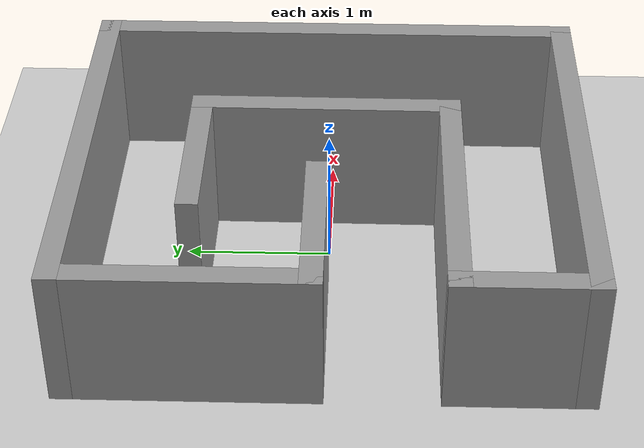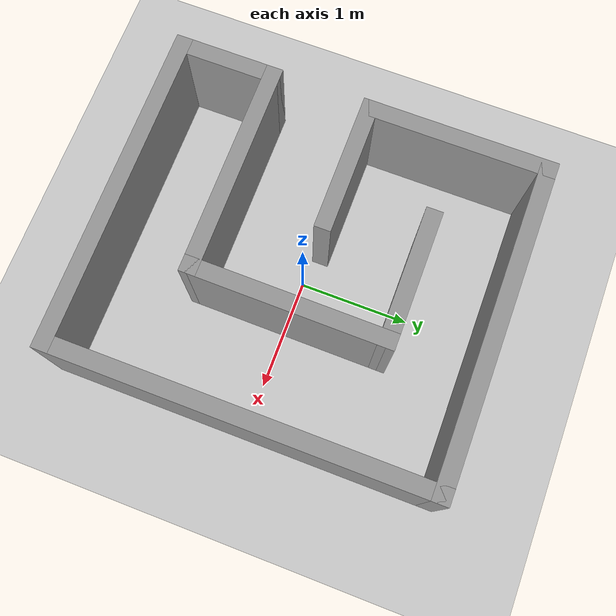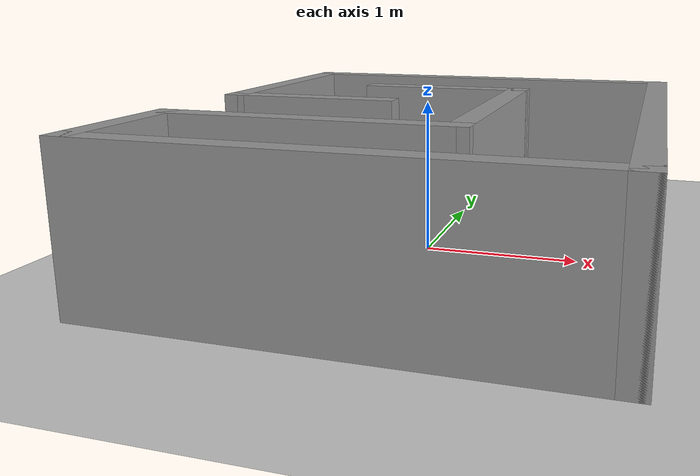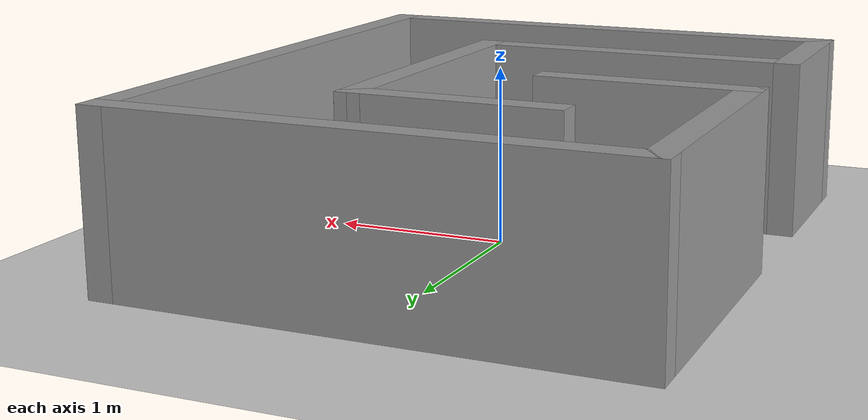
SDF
<?xml version="1.0"?>
<sdf version="1.6">
  <world name="maze_1_world">

    <!-- Required plugin for ROS-Gazebo interaction -->
    <plugin name="gazebo_ros_factory" filename="libgazebo_ros_factory.so"/>

    <!-- Ground plane -->
    <include>
      <uri>model://ground_plane</uri>
    </include>

    <!-- Sun (lighting) -->
    <include>
      <uri>model://sun</uri>
    </include>

    <include>
      <uri>model://maze_1</uri>  <!-- Must match model.config -->
      <pose>0 0 0 0 0 0</pose>   <!-- x y z roll pitch yaw -->
    </include>

    <!-- Scene settings (shadows, etc.) -->
    <scene>
      <shadows>false</shadows>
    </scene>

    <!-- Default camera view -->
    <gui fullscreen='0'>
      <camera name='user_camera'>
        <pose frame=''>0.319654 -0.235002 9.29441 0 1.5138 0.009599</pose>
        <view_controller>orbit</view_controller>
        <projection_type>perspective</projection_type>
      </camera>
    </gui>

    <!-- Physics engine settings (same as original) -->
    <physics type="ode">
      <real_time_update_rate>1000.0</real_time_update_rate>
      <max_step_size>0.001</max_step_size>
      <real_time_factor>1</real_time_factor>
      <ode>
        <solver>
          <type>quick</type>
          <iters>150</iters>
          <precon_iters>0</precon_iters>
          <sor>1.400000</sor>
          <use_dynamic_moi_rescaling>1</use_dynamic_moi_rescaling>
        </solver>
        <constraints>
          <cfm>0.00001</cfm>
          <erp>0.2</erp>
          <contact_max_correcting_vel>2000.000000</contact_max_correcting_vel>
          <contact_surface_layer>0.01000</contact_surface_layer>
        </constraints>
      </ode>
    </physics>

    <!-- Optional: If your maze is static (unchanging), declare it -->
    <model name="maze_1">
      <static>true</static>  <!-- Prevents physics updates for better performance -->
    </model>

  </world>
</sdf>

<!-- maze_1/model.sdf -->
<sdf version='1.7'>
  <model name='maze_1'>
    <pose>1.015 1.165 0 0 -0 0</pose>
    <link name='Wall_0'>
      <collision name='Wall_0_Collision'>
        <geometry>
          <box>
            <size>3 0.15 1</size>
          </box>
        </geometry>
        <pose>0 0 0.5 0 -0 0</pose>
      </collision>
      <visual name='Wall_0_Visual'>
        <pose>0 0 0.5 0 -0 0</pose>
        <geometry>
          <box>
            <size>3 0.15 1</size>
          </box>
        </geometry>
        <material>
          <script>
            <uri>file://media/materials/scripts/gazebo.material</uri>
            <name>Gazebo/Grey</name>
          </script>
          <ambient>1 1 1 1</ambient>
        </material>
        <meta>
          <layer>0</layer>
        </meta>
      </visual>
      <pose>-0 -1.675 0 0 -0 0</pose>
    </link>
    <link name='Wall_11'>
      <collision name='Wall_11_Collision'>
        <geometry>
          <box>
            <size>1 0.15 1</size>
          </box>
        </geometry>
        <pose>0 0 0.5 0 -0 0</pose>
      </collision>
      <visual name='Wall_11_Visual'>
        <pose>0 0 0.5 0 -0 0</pose>
        <geometry>
          <box>
            <size>1 0.15 1</size>
          </box>
        </geometry>
        <material>
          <script>
            <uri>file://media/materials/scripts/gazebo.material</uri>
            <name>Gazebo/Grey</name>
          </script>
          <ambient>1 1 1 1</ambient>
        </material>
        <meta>
          <layer>0</layer>
        </meta>
      </visual>
      <pose>-1.425 -1.25 0 0 -0 1.5708</pose>
    </link>
    <link name='Wall_12'>
      <collision name='Wall_12_Collision'>
        <geometry>
          <box>
            <size>2 0.15 1</size>
          </box>
        </geometry>
        <pose>0 0 0.5 0 -0 0</pose>
      </collision>
      <visual name='Wall_12_Visual'>
        <pose>0 0 0.5 0 -0 0</pose>
        <geometry>
          <box>
            <size>2 0.15 1</size>
          </box>
        </geometry>
        <material>
          <script>
            <uri>file://media/materials/scripts/gazebo.material</uri>
            <name>Gazebo/Grey</name>
          </script>
          <ambient>1 1 1 1</ambient>
        </material>
        <meta>
          <layer>0</layer>
        </meta>
      </visual>
      <pose>-0.5 -0.825 0 0 -0 0</pose>
    </link>
    <link name='Wall_13'>
      <collision name='Wall_13_Collision'>
        <geometry>
          <box>
            <size>1.87003 0.15 1</size>
          </box>
        </geometry>
        <pose>0 0 0.5 0 -0 0</pose>
      </collision>
      <visual name='Wall_13_Visual'>
        <pose>0 0 0.5 0 -0 0</pose>
        <geometry>
          <box>
            <size>1.87003 0.15 1</size>
          </box>
        </geometry>
        <material>
          <script>
            <uri>file://media/materials/scripts/gazebo.material</uri>
            <name>Gazebo/Grey</name>
          </script>
          <ambient>1 1 1 1</ambient>
        </material>
        <meta>
          <layer>0</layer>
        </meta>
      </visual>
      <pose>0.43 0.035 0 0 -0 1.56498</pose>
    </link>
    <link name='Wall_14'>
      <collision name='Wall_14_Collision'>
        <geometry>
          <box>
            <size>1.25 0.15 1</size>
          </box>
        </geometry>
        <pose>0 0 0.5 0 -0 0</pose>
      </collision>
      <visual name='Wall_14_Visual'>
        <pose>0 0 0.5 0 -0 0</pose>
        <geometry>
          <box>
            <size>1.25 0.15 1</size>
          </box>
        </geometry>
        <material>
          <script>
            <uri>file://media/materials/scripts/gazebo.material</uri>
            <name>Gazebo/Grey</name>
          </script>
          <ambient>1 1 1 1</ambient>
        </material>
        <meta>
          <layer>0</layer>
        </meta>
      </visual>
      <pose>-0.115 0.895 0 0 -0 3.14159</pose>
    </link>
    <link name='Wall_16'>
      <collision name='Wall_16_Collision'>
        <geometry>
          <box>
            <size>1.25 0.15 1</size>
          </box>
        </geometry>
        <pose>0 0 0.5 0 -0 0</pose>
      </collision>
      <visual name='Wall_16_Visual'>
        <pose>0 0 0.5 0 -0 0</pose>
        <geometry>
          <box>
            <size>1.25 0.15 1</size>
          </box>
        </geometry>
        <material>
          <script>
            <uri>file://media/materials/scripts/gazebo.material</uri>
            <name>Gazebo/Grey</name>
          </script>
          <ambient>1 1 1 1</ambient>
        </material>
        <meta>
          <layer>0</layer>
        </meta>
      </visual>
      <pose>-0.875 0.075 0 0 -0 0</pose>
    </link>
    <link name='Wall_4'>
      <collision name='Wall_4_Collision'>
        <geometry>
          <box>
            <size>3.5 0.15 1</size>
          </box>
        </geometry>
        <pose>0 0 0.5 0 -0 0</pose>
      </collision>
      <visual name='Wall_4_Visual'>
        <pose>0 0 0.5 0 -0 0</pose>
        <geometry>
          <box>
            <size>3.5 0.15 1</size>
          </box>
        </geometry>
        <material>
          <script>
            <uri>file://media/materials/scripts/gazebo.material</uri>
            <name>Gazebo/Grey</name>
          </script>
          <ambient>1 1 1 1</ambient>
        </material>
        <meta>
          <layer>0</layer>
        </meta>
      </visual>
      <pose>1.425 0 0 0 -0 1.5708</pose>
    </link>
    <link name='Wall_5'>
      <collision name='Wall_5_Collision'>
        <geometry>
          <box>
            <size>3 0.15 1</size>
          </box>
        </geometry>
        <pose>0 0 0.5 0 -0 0</pose>
      </collision>
      <visual name='Wall_5_Visual'>
        <pose>0 0 0.5 0 -0 0</pose>
        <geometry>
          <box>
            <size>3 0.15 1</size>
          </box>
        </geometry>
        <material>
          <script>
            <uri>file://media/materials/scripts/gazebo.material</uri>
            <name>Gazebo/Grey</name>
          </script>
          <ambient>1 1 1 1</ambient>
        </material>
        <meta>
          <layer>0</layer>
        </meta>
      </visual>
      <pose>-0 1.675 0 0 -0 3.14159</pose>
    </link>
    <link name='Wall_9'>
      <collision name='Wall_9_Collision'>
        <geometry>
          <box>
            <size>1.75 0.15 1</size>
          </box>
        </geometry>
        <pose>0 0 0.5 0 -0 0</pose>
      </collision>
      <visual name='Wall_9_Visual'>
        <pose>0 0 0.5 0 -0 0</pose>
        <geometry>
          <box>
            <size>1.75 0.15 1</size>
          </box>
        </geometry>
        <material>
          <script>
            <uri>file://media/materials/scripts/gazebo.material</uri>
            <name>Gazebo/Grey</name>
          </script>
          <ambient>1 1 1 1</ambient>
        </material>
        <meta>
          <layer>0</layer>
        </meta>
      </visual>
      <pose>-1.425 0.875 0 0 -0 -1.5708</pose>
    </link>
    <static>1</static>
  </model>
</sdf>
